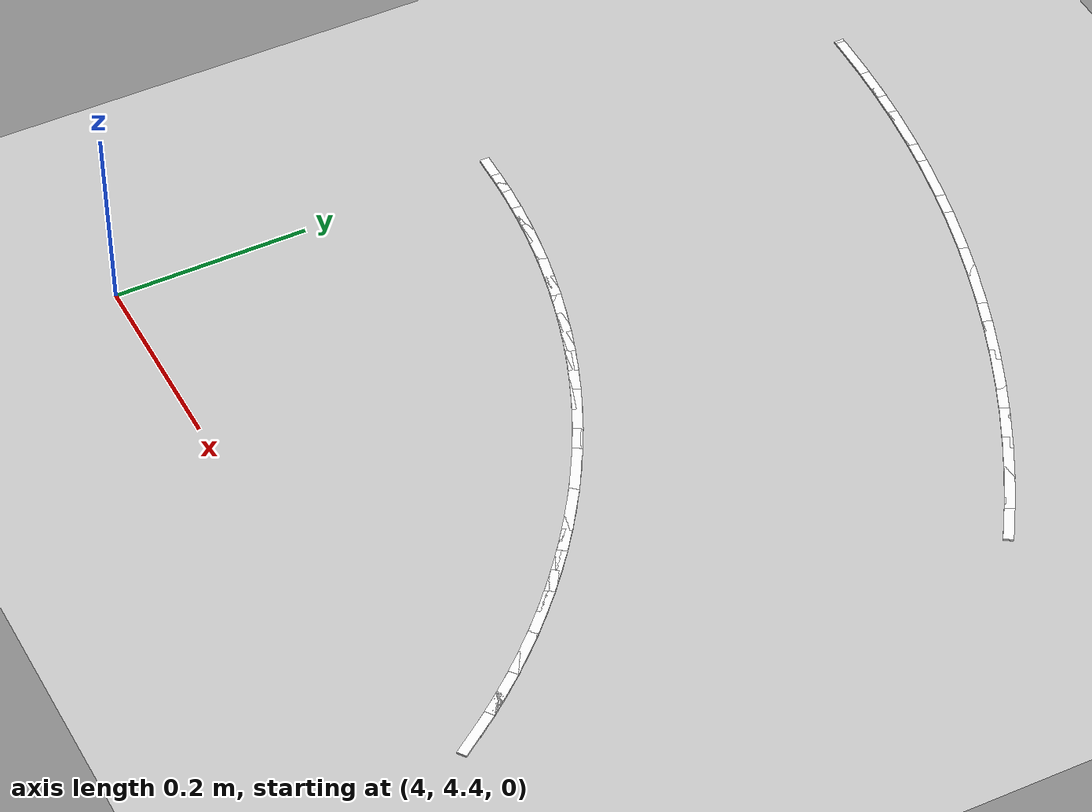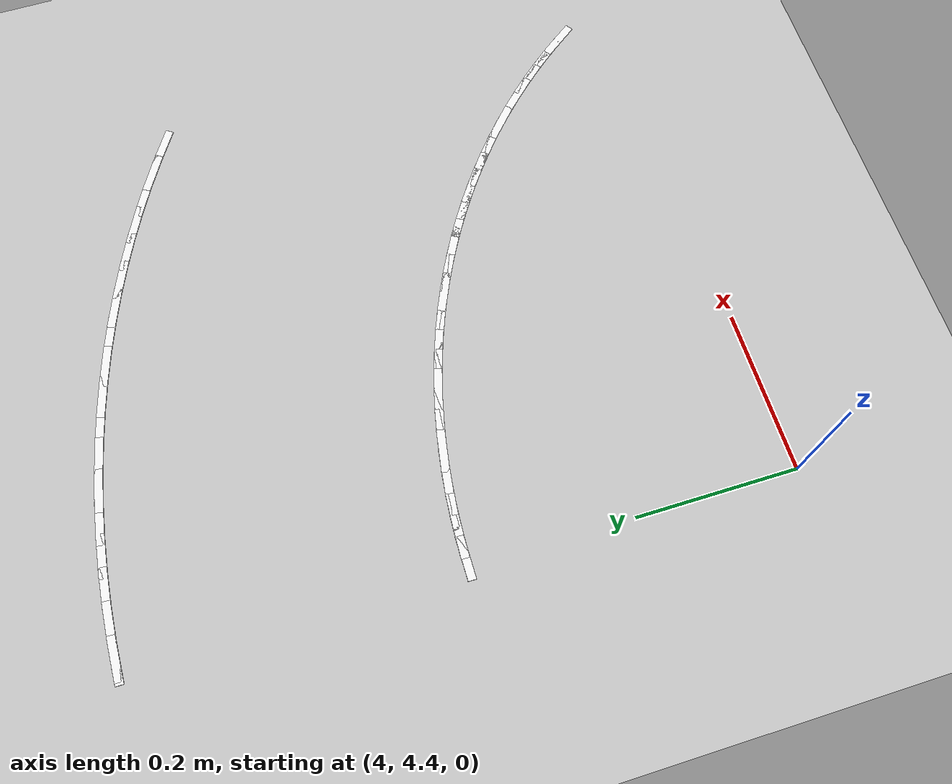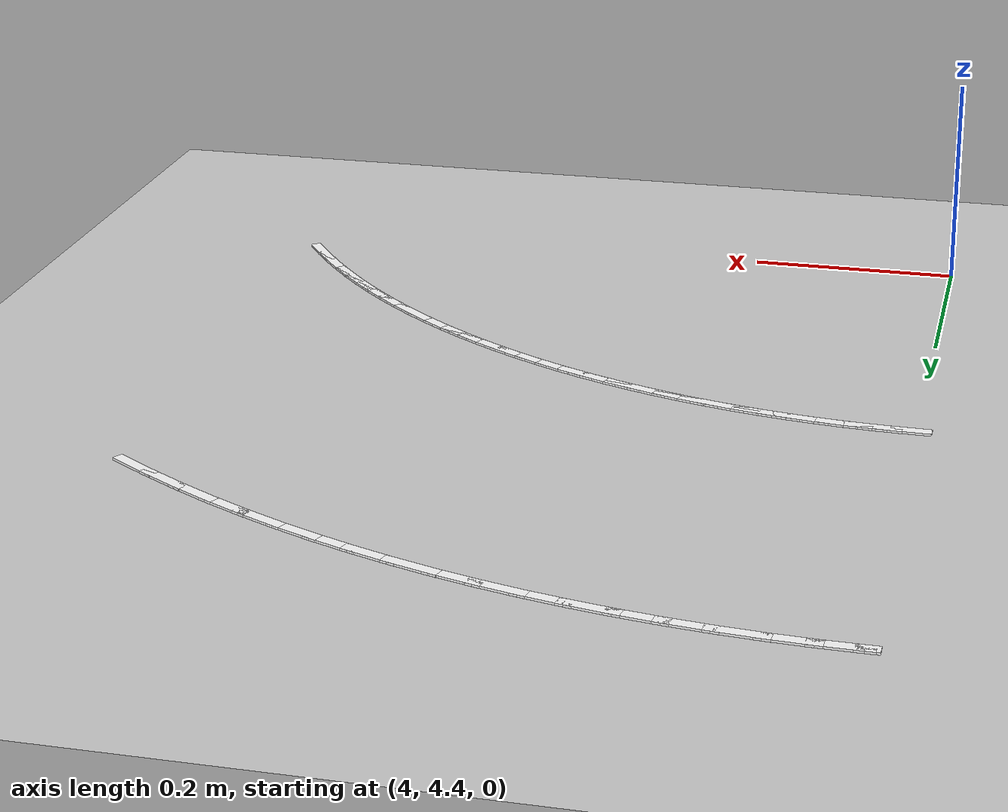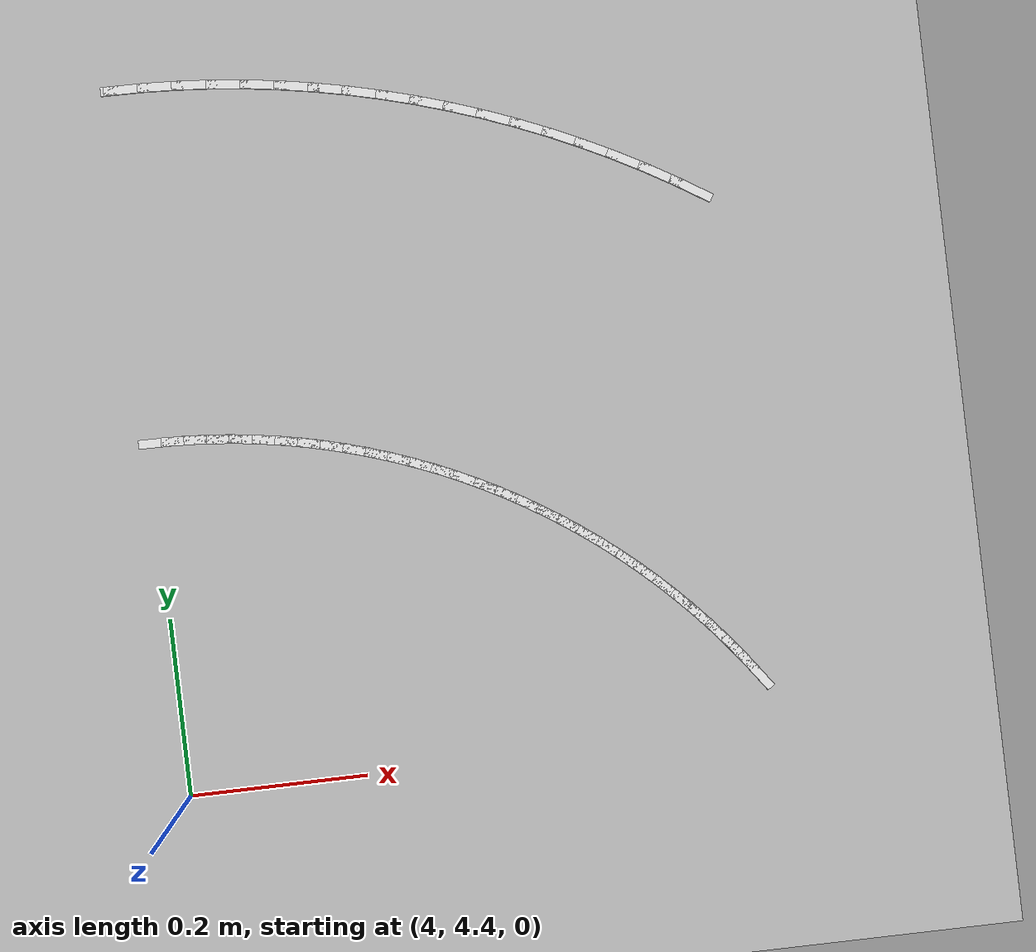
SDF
<sdf version="1.7">
 <world name="default">
  <model name="ground_plane">
   <static>1</static>
   <link name="link">
    <collision name="collision">
     <geometry><plane><normal>0 0 1</normal><size>100 100</size></plane></geometry>
     <surface>
      <contact><collide_bitmask>65535</collide_bitmask></contact>
      <friction><ode><mu>100</mu><mu2>50</mu2></ode></friction>
     </surface>
    </collision>
    <visual name="visual">
     <cast_shadows>0</cast_shadows>
     <geometry><plane><normal>0 0 1</normal><size>100 100</size></plane></geometry>
     <material>
      <script><uri>file://media/materials/scripts/gazebo.material</uri><name>Gazebo/Grey</name></script>
     </material>
    </visual>
   </link>
  </model>
  <model name="lane_line_left_169">
   <static>1</static>
   <link name="link">
    <pose>0 0 -0.004 0 -0 0</pose>
    <visual name="visual">
     <geometry><box><size>0.0521 0.01 0.01</size></box></geometry>
     <material><ambient>1 1 1 1</ambient><diffuse>1 1 1 1</diffuse></material>
    </visual>
    <collision name="collision"><geometry><box><size>0.0521 0.01 0.01</size></box></geometry></collision>
   </link>
   <pose>4.64861 4.46808 0 0 -0 2.19591</pose>
  </model>
  <model name="lane_line_left_170">
   <static>1</static>
   <link name="link">
    <pose>0 0 -0.004 0 -0 0</pose>
    <visual name="visual">
     <geometry><box><size>0.0521 0.01 0.01</size></box></geometry>
     <material><ambient>1 1 1 1</ambient><diffuse>1 1 1 1</diffuse></material>
    </visual>
    <collision name="collision"><geometry><box><size>0.0521 0.01 0.01</size></box></geometry></collision>
   </link>
   <pose>4.63328 4.48862 0 0 -0 2.22797</pose>
  </model>
  <model name="lane_line_left_171">
   <static>1</static>
   <link name="link">
    <pose>0 0 -0.004 0 -0 0</pose>
    <visual name="visual">
     <geometry><box><size>0.0521 0.01 0.01</size></box></geometry>
     <material><ambient>1 1 1 1</ambient><diffuse>1 1 1 1</diffuse></material>
    </visual>
    <collision name="collision"><geometry><box><size>0.0521 0.01 0.01</size></box></geometry></collision>
   </link>
   <pose>4.61729 4.50867 0 0 -0 2.26002</pose>
  </model>
  <model name="lane_line_left_172">
   <static>1</static>
   <link name="link">
    <pose>0 0 -0.004 0 -0 0</pose>
    <visual name="visual">
     <geometry><box><size>0.0521 0.01 0.01</size></box></geometry>
     <material><ambient>1 1 1 1</ambient><diffuse>1 1 1 1</diffuse></material>
    </visual>
    <collision name="collision"><geometry><box><size>0.0521 0.01 0.01</size></box></geometry></collision>
   </link>
   <pose>4.60067 4.52819 0 0 -0 2.29208</pose>
  </model>
  <model name="lane_line_left_173">
   <static>1</static>
   <link name="link">
    <pose>0 0 -0.004 0 -0 0</pose>
    <visual name="visual">
     <geometry><box><size>0.0521 0.01 0.01</size></box></geometry>
     <material><ambient>1 1 1 1</ambient><diffuse>1 1 1 1</diffuse></material>
    </visual>
    <collision name="collision"><geometry><box><size>0.0521 0.01 0.01</size></box></geometry></collision>
   </link>
   <pose>4.58343 4.54718 0 0 -0 2.32414</pose>
  </model>
  <model name="lane_line_left_174">
   <static>1</static>
   <link name="link">
    <pose>0 0 -0.004 0 -0 0</pose>
    <visual name="visual">
     <geometry><box><size>0.0521 0.01 0.01</size></box></geometry>
     <material><ambient>1 1 1 1</ambient><diffuse>1 1 1 1</diffuse></material>
    </visual>
    <collision name="collision"><geometry><box><size>0.0521 0.01 0.01</size></box></geometry></collision>
   </link>
   <pose>4.56559 4.56559 0 0 -0 2.35619</pose>
  </model>
  <model name="lane_line_left_175">
   <static>1</static>
   <link name="link">
    <pose>0 0 -0.004 0 -0 0</pose>
    <visual name="visual">
     <geometry><box><size>0.0521 0.01 0.01</size></box></geometry>
     <material><ambient>1 1 1 1</ambient><diffuse>1 1 1 1</diffuse></material>
    </visual>
    <collision name="collision"><geometry><box><size>0.0521 0.01 0.01</size></box></geometry></collision>
   </link>
   <pose>4.54718 4.58343 0 0 -0 2.38825</pose>
  </model>
  <model name="lane_line_left_176">
   <static>1</static>
   <link name="link">
    <pose>0 0 -0.004 0 -0 0</pose>
    <visual name="visual">
     <geometry><box><size>0.0521 0.01 0.01</size></box></geometry>
     <material><ambient>1 1 1 1</ambient><diffuse>1 1 1 1</diffuse></material>
    </visual>
    <collision name="collision"><geometry><box><size>0.0521 0.01 0.01</size></box></geometry></collision>
   </link>
   <pose>4.52819 4.60067 0 0 -0 2.42031</pose>
  </model>
  <model name="lane_line_left_177">
   <static>1</static>
   <link name="link">
    <pose>0 0 -0.004 0 -0 0</pose>
    <visual name="visual">
     <geometry><box><size>0.0521 0.01 0.01</size></box></geometry>
     <material><ambient>1 1 1 1</ambient><diffuse>1 1 1 1</diffuse></material>
    </visual>
    <collision name="collision"><geometry><box><size>0.0521 0.01 0.01</size></box></geometry></collision>
   </link>
   <pose>4.50867 4.61729 0 0 -0 2.45237</pose>
  </model>
  <model name="lane_line_left_178">
   <static>1</static>
   <link name="link">
    <pose>0 0 -0.004 0 -0 0</pose>
    <visual name="visual">
     <geometry><box><size>0.0521 0.01 0.01</size></box></geometry>
     <material><ambient>1 1 1 1</ambient><diffuse>1 1 1 1</diffuse></material>
    </visual>
    <collision name="collision"><geometry><box><size>0.0521 0.01 0.01</size></box></geometry></collision>
   </link>
   <pose>4.48862 4.63328 0 0 -0 2.48442</pose>
  </model>
  <model name="lane_line_left_179">
   <static>1</static>
   <link name="link">
    <pose>0 0 -0.004 0 -0 0</pose>
    <visual name="visual">
     <geometry><box><size>0.0521 0.01 0.01</size></box></geometry>
     <material><ambient>1 1 1 1</ambient><diffuse>1 1 1 1</diffuse></material>
    </visual>
    <collision name="collision"><geometry><box><size>0.0521 0.01 0.01</size></box></geometry></collision>
   </link>
   <pose>4.46808 4.64861 0 0 -0 2.51648</pose>
  </model>
  <model name="lane_line_left_180">
   <static>1</static>
   <link name="link">
    <pose>0 0 -0.004 0 -0 0</pose>
    <visual name="visual">
     <geometry><box><size>0.0521 0.01 0.01</size></box></geometry>
     <material><ambient>1 1 1 1</ambient><diffuse>1 1 1 1</diffuse></material>
    </visual>
    <collision name="collision"><geometry><box><size>0.0521 0.01 0.01</size></box></geometry></collision>
   </link>
   <pose>4.44705 4.66328 0 0 -0 2.54854</pose>
  </model>
  <model name="lane_line_left_181">
   <static>1</static>
   <link name="link">
    <pose>0 0 -0.004 0 -0 0</pose>
    <visual name="visual">
     <geometry><box><size>0.0521 0.01 0.01</size></box></geometry>
     <material><ambient>1 1 1 1</ambient><diffuse>1 1 1 1</diffuse></material>
    </visual>
    <collision name="collision"><geometry><box><size>0.0521 0.01 0.01</size></box></geometry></collision>
   </link>
   <pose>4.42556 4.67727 0 0 -0 2.58059</pose>
  </model>
  <model name="lane_line_right_181">
   <static>1</static>
   <link name="link">
    <pose>0 0 -0.004 0 -0 0</pose>
    <visual name="visual">
     <geometry><box><size>0.0521 0.01 0.01</size></box></geometry>
     <material><ambient>1 1 1 1</ambient><diffuse>1 1 1 1</diffuse></material>
    </visual>
    <collision name="collision"><geometry><box><size>0.0521 0.01 0.01</size></box></geometry></collision>
   </link>
   <pose>4.63837 5.01596 0 0 -0 2.58059</pose>
  </model>
  <model name="lane_line_left_182">
   <static>1</static>
   <link name="link">
    <pose>0 0 -0.004 0 -0 0</pose>
    <visual name="visual">
     <geometry><box><size>0.0521 0.01 0.01</size></box></geometry>
     <material><ambient>1 1 1 1</ambient><diffuse>1 1 1 1</diffuse></material>
    </visual>
    <collision name="collision"><geometry><box><size>0.0521 0.01 0.01</size></box></geometry></collision>
   </link>
   <pose>4.40363 4.69056 0 0 -0 2.61265</pose>
  </model>
  <model name="lane_line_right_182">
   <static>1</static>
   <link name="link">
    <pose>0 0 -0.004 0 -0 0</pose>
    <visual name="visual">
     <geometry><box><size>0.0521 0.01 0.01</size></box></geometry>
     <material><ambient>1 1 1 1</ambient><diffuse>1 1 1 1</diffuse></material>
    </visual>
    <collision name="collision"><geometry><box><size>0.0521 0.01 0.01</size></box></geometry></collision>
   </link>
   <pose>4.60548 5.0359 0 0 -0 2.61265</pose>
  </model>
  <model name="lane_line_left_183">
   <static>1</static>
   <link name="link">
    <pose>0 0 -0.004 0 -0 0</pose>
    <visual name="visual">
     <geometry><box><size>0.0521 0.01 0.01</size></box></geometry>
     <material><ambient>1 1 1 1</ambient><diffuse>1 1 1 1</diffuse></material>
    </visual>
    <collision name="collision"><geometry><box><size>0.0521 0.01 0.01</size></box></geometry></collision>
   </link>
   <pose>4.38129 4.70314 0 0 -0 2.64471</pose>
  </model>
  <model name="lane_line_right_183">
   <static>1</static>
   <link name="link">
    <pose>0 0 -0.004 0 -0 0</pose>
    <visual name="visual">
     <geometry><box><size>0.0521 0.01 0.01</size></box></geometry>
     <material><ambient>1 1 1 1</ambient><diffuse>1 1 1 1</diffuse></material>
    </visual>
    <collision name="collision"><geometry><box><size>0.0521 0.01 0.01</size></box></geometry></collision>
   </link>
   <pose>4.57197 5.05477 0 0 -0 2.64471</pose>
  </model>
  <model name="lane_line_left_184">
   <static>1</static>
   <link name="link">
    <pose>0 0 -0.004 0 -0 0</pose>
    <visual name="visual">
     <geometry><box><size>0.0521 0.01 0.01</size></box></geometry>
     <material><ambient>1 1 1 1</ambient><diffuse>1 1 1 1</diffuse></material>
    </visual>
    <collision name="collision"><geometry><box><size>0.0521 0.01 0.01</size></box></geometry></collision>
   </link>
   <pose>4.35856 4.715 0 0 -0 2.67677</pose>
  </model>
  <model name="lane_line_right_184">
   <static>1</static>
   <link name="link">
    <pose>0 0 -0.004 0 -0 0</pose>
    <visual name="visual">
     <geometry><box><size>0.0521 0.01 0.01</size></box></geometry>
     <material><ambient>1 1 1 1</ambient><diffuse>1 1 1 1</diffuse></material>
    </visual>
    <collision name="collision"><geometry><box><size>0.0521 0.01 0.01</size></box></geometry></collision>
   </link>
   <pose>4.53786 5.07256 0 0 -0 2.67677</pose>
  </model>
  <model name="lane_line_left_185">
   <static>1</static>
   <link name="link">
    <pose>0 0 -0.004 0 -0 0</pose>
    <visual name="visual">
     <geometry><box><size>0.0521 0.01 0.01</size></box></geometry>
     <material><ambient>1 1 1 1</ambient><diffuse>1 1 1 1</diffuse></material>
    </visual>
    <collision name="collision"><geometry><box><size>0.0521 0.01 0.01</size></box></geometry></collision>
   </link>
   <pose>4.33546 4.72613 0 0 -0 2.70882</pose>
  </model>
  <model name="lane_line_right_185">
   <static>1</static>
   <link name="link">
    <pose>0 0 -0.004 0 -0 0</pose>
    <visual name="visual">
     <geometry><box><size>0.0521 0.01 0.01</size></box></geometry>
     <material><ambient>1 1 1 1</ambient><diffuse>1 1 1 1</diffuse></material>
    </visual>
    <collision name="collision"><geometry><box><size>0.0521 0.01 0.01</size></box></geometry></collision>
   </link>
   <pose>4.50321 5.08925 0 0 -0 2.70882</pose>
  </model>
  <model name="lane_line_left_186">
   <static>1</static>
   <link name="link">
    <pose>0 0 -0.004 0 -0 0</pose>
    <visual name="visual">
     <geometry><box><size>0.0521 0.01 0.01</size></box></geometry>
     <material><ambient>1 1 1 1</ambient><diffuse>1 1 1 1</diffuse></material>
    </visual>
    <collision name="collision"><geometry><box><size>0.0521 0.01 0.01</size></box></geometry></collision>
   </link>
   <pose>4.31201 4.73651 0 0 -0 2.74088</pose>
  </model>
  <model name="lane_line_right_186">
   <static>1</static>
   <link name="link">
    <pose>0 0 -0.004 0 -0 0</pose>
    <visual name="visual">
     <geometry><box><size>0.0521 0.01 0.01</size></box></geometry>
     <material><ambient>1 1 1 1</ambient><diffuse>1 1 1 1</diffuse></material>
    </visual>
    <collision name="collision"><geometry><box><size>0.0521 0.01 0.01</size></box></geometry></collision>
   </link>
   <pose>4.46804 5.10482 0 0 -0 2.74088</pose>
  </model>
  <model name="lane_line_left_187">
   <static>1</static>
   <link name="link">
    <pose>0 0 -0.004 0 -0 0</pose>
    <visual name="visual">
     <geometry><box><size>0.0521 0.01 0.01</size></box></geometry>
     <material><ambient>1 1 1 1</ambient><diffuse>1 1 1 1</diffuse></material>
    </visual>
    <collision name="collision"><geometry><box><size>0.0521 0.01 0.01</size></box></geometry></collision>
   </link>
   <pose>4.28824 4.74613 0 0 -0 2.77294</pose>
  </model>
  <model name="lane_line_right_187">
   <static>1</static>
   <link name="link">
    <pose>0 0 -0.004 0 -0 0</pose>
    <visual name="visual">
     <geometry><box><size>0.0521 0.01 0.01</size></box></geometry>
     <material><ambient>1 1 1 1</ambient><diffuse>1 1 1 1</diffuse></material>
    </visual>
    <collision name="collision"><geometry><box><size>0.0521 0.01 0.01</size></box></geometry></collision>
   </link>
   <pose>4.43239 5.11926 0 0 -0 2.77294</pose>
  </model>
  <model name="lane_line_left_188">
   <static>1</static>
   <link name="link">
    <pose>0 0 -0.004 0 -0 0</pose>
    <visual name="visual">
     <geometry><box><size>0.0521 0.01 0.01</size></box></geometry>
     <material><ambient>1 1 1 1</ambient><diffuse>1 1 1 1</diffuse></material>
    </visual>
    <collision name="collision"><geometry><box><size>0.0521 0.01 0.01</size></box></geometry></collision>
   </link>
   <pose>4.26418 4.75499 0 0 -0 2.80499</pose>
  </model>
  <model name="lane_line_right_188">
   <static>1</static>
   <link name="link">
    <pose>0 0 -0.004 0 -0 0</pose>
    <visual name="visual">
     <geometry><box><size>0.0521 0.01 0.01</size></box></geometry>
     <material><ambient>1 1 1 1</ambient><diffuse>1 1 1 1</diffuse></material>
    </visual>
    <collision name="collision"><geometry><box><size>0.0521 0.01 0.01</size></box></geometry></collision>
   </link>
   <pose>4.39629 5.13254 0 0 -0 2.80499</pose>
  </model>
  <model name="lane_line_left_189">
   <static>1</static>
   <link name="link">
    <pose>0 0 -0.004 0 -0 0</pose>
    <visual name="visual">
     <geometry><box><size>0.0521 0.01 0.01</size></box></geometry>
     <material><ambient>1 1 1 1</ambient><diffuse>1 1 1 1</diffuse></material>
    </visual>
    <collision name="collision"><geometry><box><size>0.0521 0.01 0.01</size></box></geometry></collision>
   </link>
   <pose>4.23985 4.76306 0 0 -0 2.83705</pose>
  </model>
  <model name="lane_line_right_189">
   <static>1</static>
   <link name="link">
    <pose>0 0 -0.004 0 -0 0</pose>
    <visual name="visual">
     <geometry><box><size>0.0521 0.01 0.01</size></box></geometry>
     <material><ambient>1 1 1 1</ambient><diffuse>1 1 1 1</diffuse></material>
    </visual>
    <collision name="collision"><geometry><box><size>0.0521 0.01 0.01</size></box></geometry></collision>
   </link>
   <pose>4.35979 5.14466 0 0 -0 2.83705</pose>
  </model>
  <model name="lane_line_left_190">
   <static>1</static>
   <link name="link">
    <pose>0 0 -0.004 0 -0 0</pose>
    <visual name="visual">
     <geometry><box><size>0.0521 0.01 0.01</size></box></geometry>
     <material><ambient>1 1 1 1</ambient><diffuse>1 1 1 1</diffuse></material>
    </visual>
    <collision name="collision"><geometry><box><size>0.0521 0.01 0.01</size></box></geometry></collision>
   </link>
   <pose>4.21527 4.77036 0 0 -0 2.86911</pose>
  </model>
  <model name="lane_line_right_190">
   <static>1</static>
   <link name="link">
    <pose>0 0 -0.004 0 -0 0</pose>
    <visual name="visual">
     <geometry><box><size>0.0521 0.01 0.01</size></box></geometry>
     <material><ambient>1 1 1 1</ambient><diffuse>1 1 1 1</diffuse></material>
    </visual>
    <collision name="collision"><geometry><box><size>0.0521 0.01 0.01</size></box></geometry></collision>
   </link>
   <pose>4.32292 5.1556 0 0 -0 2.86911</pose>
  </model>
  <model name="lane_line_left_191">
   <static>1</static>
   <link name="link">
    <pose>0 0 -0.004 0 -0 0</pose>
    <visual name="visual">
     <geometry><box><size>0.0521 0.01 0.01</size></box></geometry>
     <material><ambient>1 1 1 1</ambient><diffuse>1 1 1 1</diffuse></material>
    </visual>
    <collision name="collision"><geometry><box><size>0.0521 0.01 0.01</size></box></geometry></collision>
   </link>
   <pose>4.19046 4.77686 0 0 -0 2.90116</pose>
  </model>
  <model name="lane_line_right_191">
   <static>1</static>
   <link name="link">
    <pose>0 0 -0.004 0 -0 0</pose>
    <visual name="visual">
     <geometry><box><size>0.0521 0.01 0.01</size></box></geometry>
     <material><ambient>1 1 1 1</ambient><diffuse>1 1 1 1</diffuse></material>
    </visual>
    <collision name="collision"><geometry><box><size>0.0521 0.01 0.01</size></box></geometry></collision>
   </link>
   <pose>4.28571 5.16536 0 0 -0 2.90116</pose>
  </model>
  <model name="lane_line_left_192">
   <static>1</static>
   <link name="link">
    <pose>0 0 -0.004 0 -0 0</pose>
    <visual name="visual">
     <geometry><box><size>0.0521 0.01 0.01</size></box></geometry>
     <material><ambient>1 1 1 1</ambient><diffuse>1 1 1 1</diffuse></material>
    </visual>
    <collision name="collision"><geometry><box><size>0.0521 0.01 0.01</size></box></geometry></collision>
   </link>
   <pose>4.16547 4.78257 0 0 -0 2.93322</pose>
  </model>
  <model name="lane_line_right_192">
   <static>1</static>
   <link name="link">
    <pose>0 0 -0.004 0 -0 0</pose>
    <visual name="visual">
     <geometry><box><size>0.0521 0.01 0.01</size></box></geometry>
     <material><ambient>1 1 1 1</ambient><diffuse>1 1 1 1</diffuse></material>
    </visual>
    <collision name="collision"><geometry><box><size>0.0521 0.01 0.01</size></box></geometry></collision>
   </link>
   <pose>4.24821 5.17392 0 0 -0 2.93322</pose>
  </model>
  <model name="lane_line_left_193">
   <static>1</static>
   <link name="link">
    <pose>0 0 -0.004 0 -0 0</pose>
    <visual name="visual">
     <geometry><box><size>0.0521 0.01 0.01</size></box></geometry>
     <material><ambient>1 1 1 1</ambient><diffuse>1 1 1 1</diffuse></material>
    </visual>
    <collision name="collision"><geometry><box><size>0.0521 0.01 0.01</size></box></geometry></collision>
   </link>
   <pose>4.1403 4.78747 0 0 -0 2.96528</pose>
  </model>
  <model name="lane_line_right_193">
   <static>1</static>
   <link name="link">
    <pose>0 0 -0.004 0 -0 0</pose>
    <visual name="visual">
     <geometry><box><size>0.0521 0.01 0.01</size></box></geometry>
     <material><ambient>1 1 1 1</ambient><diffuse>1 1 1 1</diffuse></material>
    </visual>
    <collision name="collision"><geometry><box><size>0.0521 0.01 0.01</size></box></geometry></collision>
   </link>
   <pose>4.21046 5.18127 0 0 -0 2.96528</pose>
  </model>
  <model name="lane_line_left_194">
   <static>1</static>
   <link name="link">
    <pose>0 0 -0.004 0 -0 0</pose>
    <visual name="visual">
     <geometry><box><size>0.0521 0.01 0.01</size></box></geometry>
     <material><ambient>1 1 1 1</ambient><diffuse>1 1 1 1</diffuse></material>
    </visual>
    <collision name="collision"><geometry><box><size>0.0521 0.01 0.01</size></box></geometry></collision>
   </link>
   <pose>4.11499 4.79156 0 0 -0 2.99734</pose>
  </model>
  <model name="lane_line_right_194">
   <static>1</static>
   <link name="link">
    <pose>0 0 -0.004 0 -0 0</pose>
    <visual name="visual">
     <geometry><box><size>0.0521 0.01 0.01</size></box></geometry>
     <material><ambient>1 1 1 1</ambient><diffuse>1 1 1 1</diffuse></material>
    </visual>
    <collision name="collision"><geometry><box><size>0.0521 0.01 0.01</size></box></geometry></collision>
   </link>
   <pose>4.17249 5.18741 0 0 -0 2.99734</pose>
  </model>
  <model name="lane_line_left_195">
   <static>1</static>
   <link name="link">
    <pose>0 0 -0.004 0 -0 0</pose>
    <visual name="visual">
     <geometry><box><size>0.0521 0.01 0.01</size></box></geometry>
     <material><ambient>1 1 1 1</ambient><diffuse>1 1 1 1</diffuse></material>
    </visual>
    <collision name="collision"><geometry><box><size>0.0521 0.01 0.01</size></box></geometry></collision>
   </link>
   <pose>4.08956 4.79484 0 0 -0 3.02939</pose>
  </model>
  <model name="lane_line_right_195">
   <static>1</static>
   <link name="link">
    <pose>0 0 -0.004 0 -0 0</pose>
    <visual name="visual">
     <geometry><box><size>0.0521 0.01 0.01</size></box></geometry>
     <material><ambient>1 1 1 1</ambient><diffuse>1 1 1 1</diffuse></material>
    </visual>
    <collision name="collision"><geometry><box><size>0.0521 0.01 0.01</size></box></geometry></collision>
   </link>
   <pose>4.13434 5.19233 0 0 -0 3.02939</pose>
  </model>
  <model name="lane_line_left_196">
   <static>1</static>
   <link name="link">
    <pose>0 0 -0.004 0 -0 0</pose>
    <visual name="visual">
     <geometry><box><size>0.0521 0.01 0.01</size></box></geometry>
     <material><ambient>1 1 1 1</ambient><diffuse>1 1 1 1</diffuse></material>
    </visual>
    <collision name="collision"><geometry><box><size>0.0521 0.01 0.01</size></box></geometry></collision>
   </link>
   <pose>4.06404 4.7973 0 0 -0 3.06145</pose>
  </model>
  <model name="lane_line_right_196">
   <static>1</static>
   <link name="link">
    <pose>0 0 -0.004 0 -0 0</pose>
    <visual name="visual">
     <geometry><box><size>0.0521 0.01 0.01</size></box></geometry>
     <material><ambient>1 1 1 1</ambient><diffuse>1 1 1 1</diffuse></material>
    </visual>
    <collision name="collision"><geometry><box><size>0.0521 0.01 0.01</size></box></geometry></collision>
   </link>
   <pose>4.09606 5.19602 0 0 -0 3.06145</pose>
  </model>
  <model name="lane_line_left_197">
   <static>1</static>
   <link name="link">
    <pose>0 0 -0.004 0 -0 0</pose>
    <visual name="visual">
     <geometry><box><size>0.0521 0.01 0.01</size></box></geometry>
     <material><ambient>1 1 1 1</ambient><diffuse>1 1 1 1</diffuse></material>
    </visual>
    <collision name="collision"><geometry><box><size>0.0521 0.01 0.01</size></box></geometry></collision>
   </link>
   <pose>4.03845 4.79895 0 0 -0 3.09351</pose>
  </model>
  <model name="lane_line_right_197">
   <static>1</static>
   <link name="link">
    <pose>0 0 -0.004 0 -0 0</pose>
    <visual name="visual">
     <geometry><box><size>0.0521 0.01 0.01</size></box></geometry>
     <material><ambient>1 1 1 1</ambient><diffuse>1 1 1 1</diffuse></material>
    </visual>
    <collision name="collision"><geometry><box><size>0.0521 0.01 0.01</size></box></geometry></collision>
   </link>
   <pose>4.05767 5.19848 0 0 -0 3.09351</pose>
  </model>
  <model name="lane_line_left_198">
   <static>1</static>
   <link name="link">
    <pose>0 0 -0.004 0 -0 0</pose>
    <visual name="visual">
     <geometry><box><size>0.0521 0.01 0.01</size></box></geometry>
     <material><ambient>1 1 1 1</ambient><diffuse>1 1 1 1</diffuse></material>
    </visual>
    <collision name="collision"><geometry><box><size>0.0521 0.01 0.01</size></box></geometry></collision>
   </link>
   <pose>4.01282 4.79977 0 0 -0 3.12556</pose>
  </model>
  <model name="lane_line_right_198">
   <static>1</static>
   <link name="link">
    <pose>0 0 -0.004 0 -0 0</pose>
    <visual name="visual">
     <geometry><box><size>0.0521 0.01 0.01</size></box></geometry>
     <material><ambient>1 1 1 1</ambient><diffuse>1 1 1 1</diffuse></material>
    </visual>
    <collision name="collision"><geometry><box><size>0.0521 0.01 0.01</size></box></geometry></collision>
   </link>
   <pose>4.01923 5.19972 0 0 -0 3.12556</pose>
  </model>
  <model name="lane_line_left_199">
   <static>1</static>
   <link name="link">
    <pose>0 0 -0.004 0 -0 0</pose>
    <visual name="visual">
     <geometry><box><size>0.02 0.01 0.01</size></box></geometry>
     <material><ambient>1 1 1 1</ambient><diffuse>1 1 1 1</diffuse></material>
    </visual>
    <collision name="collision"><geometry><box><size>0.02 0.01 0.01</size></box></geometry></collision>
   </link>
   <pose>4 5.2 0 0 -0 0</pose>
  </model>
 </world>
</sdf>
